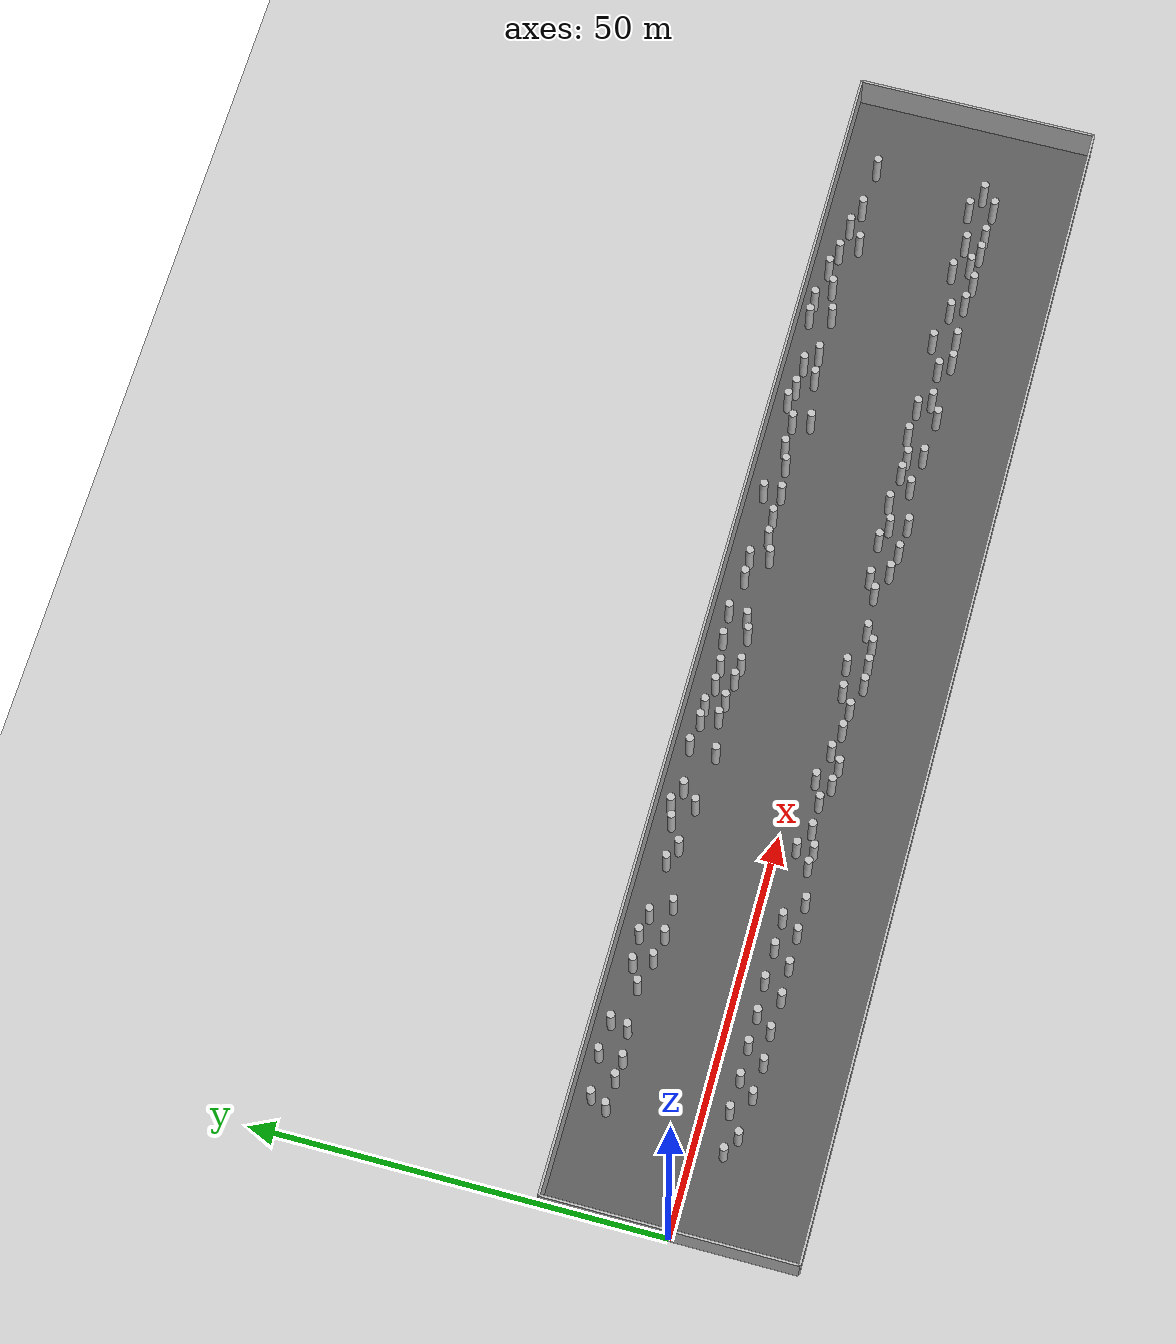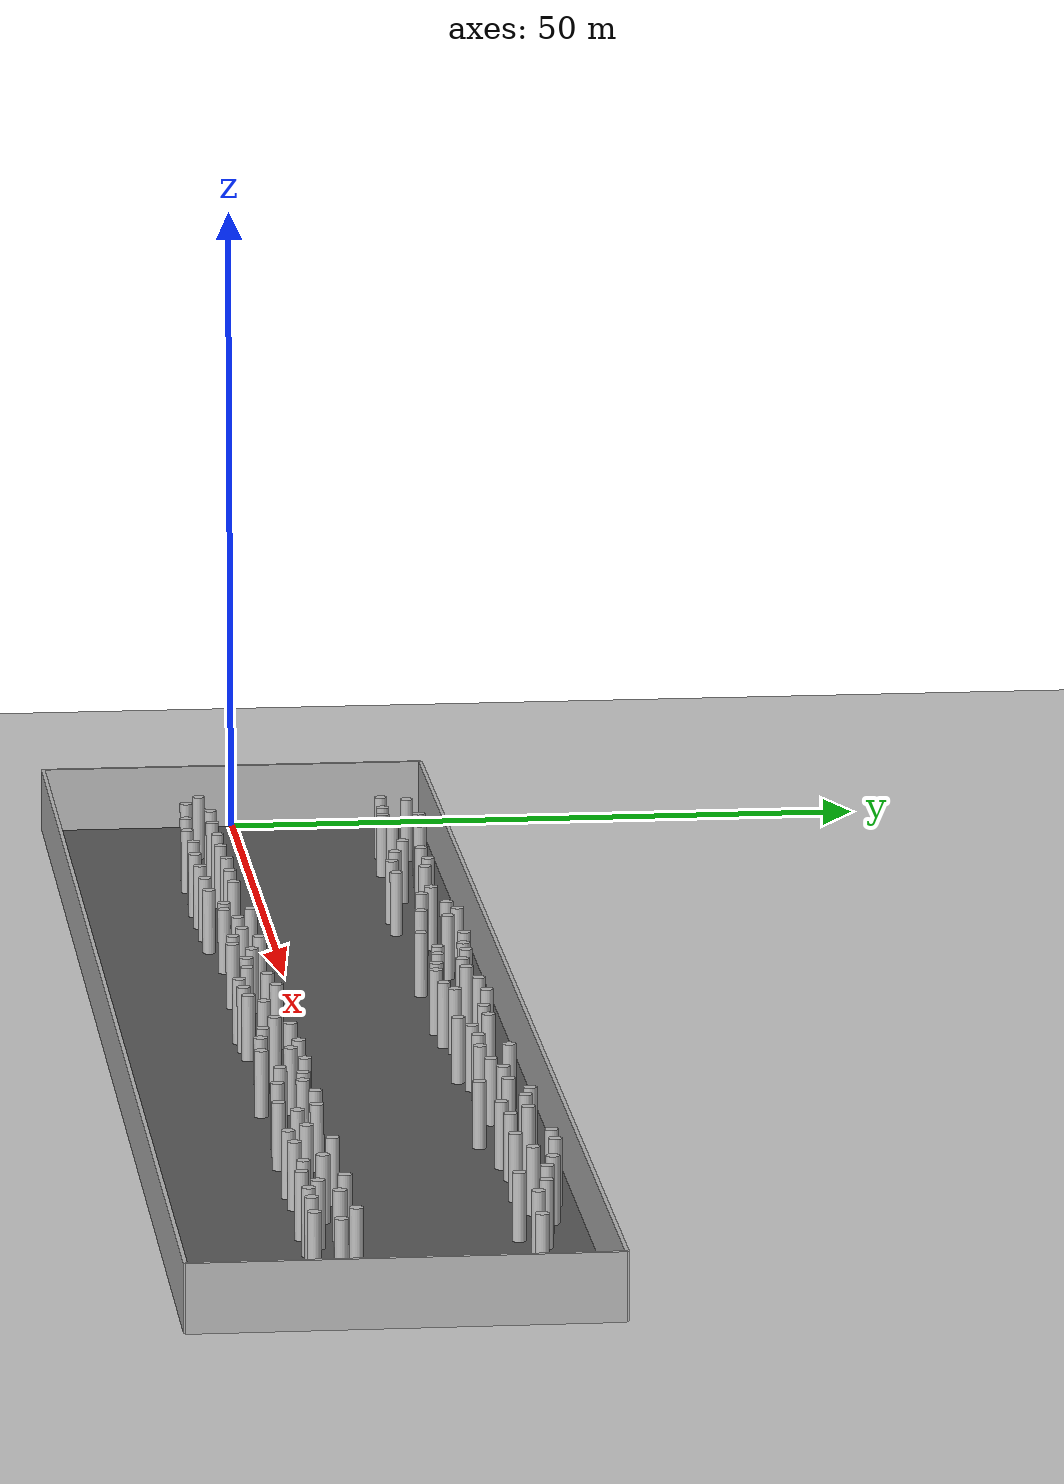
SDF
<?xml version="1.0" ?>
<sdf version="1.5">
  <world name="default">
    <plugin name="gazebo_ros_state" filename="libgazebo_ros_state.so">
      <ros>
        <namespace>/gazebo</namespace>
      </ros>
      <update_rate>20.0</update_rate>
    </plugin>

    <include><uri>model://sun</uri></include>
    <include><uri>model://ground_plane</uri></include>

    <model name="corridor_floor">
      <static>true</static>
      <pose>75 0 0.01 0 0 0</pose>
      <link name="link">
        <collision name="collision">
          <geometry><box><size>150 30 0.02</size></box></geometry>
        </collision>
        <visual name="visual">
          <geometry><box><size>150 30 0.02</size></box></geometry>
          <material>
            <ambient>0.25 0.25 0.25 1</ambient>
            <diffuse>0.35 0.35 0.35 1</diffuse>
          </material>
        </visual>
      </link>
    </model>

    <physics name="default_physics" default="0" type="ode">
      <gravity>0 0 -9.8066</gravity>
      <ode>
        <solver>
          <type>quick</type>
          <iters>10</iters>
          <sor>1.3</sor>
          <use_dynamic_moi_rescaling>0</use_dynamic_moi_rescaling>
        </solver>
        <constraints>
          <cfm>0</cfm>
          <erp>0.2</erp>
          <contact_max_correcting_vel>100</contact_max_correcting_vel>
          <contact_surface_layer>0.001</contact_surface_layer>
        </constraints>
      </ode>
      <max_step_size>0.004</max_step_size>
      <real_time_factor>1</real_time_factor>
      <real_time_update_rate>250</real_time_update_rate>
      <magnetic_field>6.0e-6 2.3e-5 -4.2e-5</magnetic_field>
    </physics>

    <model name="left_wall">
      <static>true</static>
      <pose>75 15.15 2.5 0 0 0</pose>
      <link name="link">
        <collision name="collision">
          <geometry><box><size>150 0.3 5</size></box></geometry>
        </collision>
        <visual name="visual">
          <geometry><box><size>150 0.3 5</size></box></geometry>
        </visual>
      </link>
    </model>

    <model name="right_wall">
      <static>true</static>
      <pose>75 -15.15 2.5 0 0 0</pose>
      <link name="link">
        <collision name="collision">
          <geometry><box><size>150 0.3 5</size></box></geometry>
        </collision>
        <visual name="visual">
          <geometry><box><size>150 0.3 5</size></box></geometry>
        </visual>
      </link>
    </model>

    <model name="start_wall">
      <static>true</static>
      <pose>0 0 2.5 0 0 0</pose>
      <link name="link">
        <collision name="collision">
          <geometry><box><size>0.3 30.3 5</size></box></geometry>
        </collision>
        <visual name="visual">
          <geometry><box><size>0.3 30.3 5</size></box></geometry>
        </visual>
      </link>
    </model>

    <model name="end_wall">
      <static>true</static>
      <pose>150 0 2.5 0 0 0</pose>
      <link name="link">
        <collision name="collision">
          <geometry><box><size>0.3 30.3 5</size></box></geometry>
        </collision>
        <visual name="visual">
          <geometry><box><size>0.3 30.3 5</size></box></geometry>
        </visual>
      </link>
    </model>

    <include><name>cylinder_000</name><uri>model://cylinder_r05_h5</uri><pose>15.686 -2.953 2.5 0 0 0</pose></include>
    <include><name>cylinder_001</name><uri>model://cylinder_r05_h5</uri><pose>18.088 -5.049 2.5 0 0 0</pose></include>
    <include><name>cylinder_002</name><uri>model://cylinder_r05_h5</uri><pose>19.712 -3.126 2.5 0 0 0</pose></include>
    <include><name>cylinder_003</name><uri>model://cylinder_r05_h5</uri><pose>22.123 -5.277 2.5 0 0 0</pose></include>
    <include><name>cylinder_004</name><uri>model://cylinder_r05_h5</uri><pose>23.708 -3.039 2.5 0 0 0</pose></include>
    <include><name>cylinder_005</name><uri>model://cylinder_r05_h5</uri><pose>25.994 -5.092 2.5 0 0 0</pose></include>
    <include><name>cylinder_006</name><uri>model://cylinder_r05_h5</uri><pose>27.535 -3.099 2.5 0 0 0</pose></include>
    <include><name>cylinder_007</name><uri>model://cylinder_r05_h5</uri><pose>30.170 -5.292 2.5 0 0 0</pose></include>
    <include><name>cylinder_008</name><uri>model://cylinder_r05_h5</uri><pose>31.640 -2.943 2.5 0 0 0</pose></include>
    <include><name>cylinder_009</name><uri>model://cylinder_r05_h5</uri><pose>34.092 -5.204 2.5 0 0 0</pose></include>
    <include><name>cylinder_010</name><uri>model://cylinder_r05_h5</uri><pose>35.795 -3.031 2.5 0 0 0</pose></include>
    <include><name>cylinder_011</name><uri>model://cylinder_r05_h5</uri><pose>38.208 -5.139 2.5 0 0 0</pose></include>
    <include><name>cylinder_012</name><uri>model://cylinder_r05_h5</uri><pose>39.548 -3.034 2.5 0 0 0</pose></include>
    <include><name>cylinder_013</name><uri>model://cylinder_r05_h5</uri><pose>42.108 -5.121 2.5 0 0 0</pose></include>
    <include><name>cylinder_014</name><uri>model://cylinder_r05_h5</uri><pose>48.543 -4.456 2.5 0 0 0</pose></include>
    <include><name>cylinder_015</name><uri>model://cylinder_r05_h5</uri><pose>61.215 -3.394 2.5 0 0 0</pose></include>
    <include><name>cylinder_016</name><uri>model://cylinder_r05_h5</uri><pose>72.411 -2.457 2.5 0 0 0</pose></include>
    <include><name>cylinder_017</name><uri>model://cylinder_r05_h5</uri><pose>68.954 -2.844 2.5 0 0 0</pose></include>
    <include><name>cylinder_018</name><uri>model://cylinder_r05_h5</uri><pose>66.961 -4.200 2.5 0 0 0</pose></include>
    <include><name>cylinder_019</name><uri>model://cylinder_r05_h5</uri><pose>57.095 -4.488 2.5 0 0 0</pose></include>
    <include><name>cylinder_020</name><uri>model://cylinder_r05_h5</uri><pose>57.309 -2.485 2.5 0 0 0</pose></include>
    <include><name>cylinder_021</name><uri>model://cylinder_r05_h5</uri><pose>51.064 -3.628 2.5 0 0 0</pose></include>
    <include><name>cylinder_022</name><uri>model://cylinder_r05_h5</uri><pose>46.479 -4.293 2.5 0 0 0</pose></include>
    <include><name>cylinder_023</name><uri>model://cylinder_r05_h5</uri><pose>64.083 -4.023 2.5 0 0 0</pose></include>
    <include><name>cylinder_024</name><uri>model://cylinder_r05_h5</uri><pose>73.048 -4.961 2.5 0 0 0</pose></include>
    <include><name>cylinder_025</name><uri>model://cylinder_r05_h5</uri><pose>70.495 -5.081 2.5 0 0 0</pose></include>
    <include><name>cylinder_026</name><uri>model://cylinder_r05_h5</uri><pose>48.399 -2.426 2.5 0 0 0</pose></include>
    <include><name>cylinder_027</name><uri>model://cylinder_r05_h5</uri><pose>54.629 -3.577 2.5 0 0 0</pose></include>
    <include><name>cylinder_028</name><uri>model://cylinder_r05_h5</uri><pose>59.607 -4.719 2.5 0 0 0</pose></include>
    <include><name>cylinder_029</name><uri>model://cylinder_r05_h5</uri><pose>97.187 -4.259 2.5 0 0 0</pose></include>
    <include><name>cylinder_030</name><uri>model://cylinder_r05_h5</uri><pose>100.966 -2.926 2.5 0 0 0</pose></include>
    <include><name>cylinder_031</name><uri>model://cylinder_r05_h5</uri><pose>82.281 -3.414 2.5 0 0 0</pose></include>
    <include><name>cylinder_032</name><uri>model://cylinder_r05_h5</uri><pose>85.592 -4.554 2.5 0 0 0</pose></include>
    <include><name>cylinder_033</name><uri>model://cylinder_r05_h5</uri><pose>77.343 -3.800 2.5 0 0 0</pose></include>
    <include><name>cylinder_034</name><uri>model://cylinder_r05_h5</uri><pose>104.086 -2.296 2.5 0 0 0</pose></include>
    <include><name>cylinder_035</name><uri>model://cylinder_r05_h5</uri><pose>92.169 -5.210 2.5 0 0 0</pose></include>
    <include><name>cylinder_036</name><uri>model://cylinder_r05_h5</uri><pose>84.199 -2.408 2.5 0 0 0</pose></include>
    <include><name>cylinder_037</name><uri>model://cylinder_r05_h5</uri><pose>75.588 -4.810 2.5 0 0 0</pose></include>
    <include><name>cylinder_038</name><uri>model://cylinder_r05_h5</uri><pose>89.278 -2.234 2.5 0 0 0</pose></include>
    <include><name>cylinder_039</name><uri>model://cylinder_r05_h5</uri><pose>91.544 -3.019 2.5 0 0 0</pose></include>
    <include><name>cylinder_040</name><uri>model://cylinder_r05_h5</uri><pose>94.604 -2.237 2.5 0 0 0</pose></include>
    <include><name>cylinder_041</name><uri>model://cylinder_r05_h5</uri><pose>98.775 -2.721 2.5 0 0 0</pose></include>
    <include><name>cylinder_042</name><uri>model://cylinder_r05_h5</uri><pose>101.696 -4.820 2.5 0 0 0</pose></include>
    <include><name>cylinder_043</name><uri>model://cylinder_r05_h5</uri><pose>88.399 -4.954 2.5 0 0 0</pose></include>
    <include><name>cylinder_044</name><uri>model://cylinder_r05_h5</uri><pose>131.829 -2.969 2.5 0 0 0</pose></include>
    <include><name>cylinder_045</name><uri>model://cylinder_r05_h5</uri><pose>123.560 -4.816 2.5 0 0 0</pose></include>
    <include><name>cylinder_046</name><uri>model://cylinder_r05_h5</uri><pose>115.198 -5.199 2.5 0 0 0</pose></include>
    <include><name>cylinder_047</name><uri>model://cylinder_r05_h5</uri><pose>122.103 -3.314 2.5 0 0 0</pose></include>
    <include><name>cylinder_048</name><uri>model://cylinder_r05_h5</uri><pose>130.932 -5.076 2.5 0 0 0</pose></include>
    <include><name>cylinder_049</name><uri>model://cylinder_r05_h5</uri><pose>113.735 -3.767 2.5 0 0 0</pose></include>
    <include><name>cylinder_050</name><uri>model://cylinder_r05_h5</uri><pose>118.370 -5.006 2.5 0 0 0</pose></include>
    <include><name>cylinder_051</name><uri>model://cylinder_r05_h5</uri><pose>109.448 -4.046 2.5 0 0 0</pose></include>
    <include><name>cylinder_052</name><uri>model://cylinder_r05_h5</uri><pose>126.532 -5.199 2.5 0 0 0</pose></include>
    <include><name>cylinder_053</name><uri>model://cylinder_r05_h5</uri><pose>133.462 -5.083 2.5 0 0 0</pose></include>
    <include><name>cylinder_054</name><uri>model://cylinder_r05_h5</uri><pose>107.970 -2.516 2.5 0 0 0</pose></include>
    <include><name>cylinder_055</name><uri>model://cylinder_r05_h5</uri><pose>117.389 -2.210 2.5 0 0 0</pose></include>
    <include><name>cylinder_056</name><uri>model://cylinder_r05_h5</uri><pose>128.978 -4.254 2.5 0 0 0</pose></include>
    <include><name>cylinder_057</name><uri>model://cylinder_r05_h5</uri><pose>127.639 -2.251 2.5 0 0 0</pose></include>
    <include><name>cylinder_058</name><uri>model://cylinder_r05_h5</uri><pose>107.212 -5.196 2.5 0 0 0</pose></include>
    <include><name>cylinder_059</name><uri>model://cylinder_r05_h5</uri><pose>10.810 -3.514 2.5 0 0 0</pose></include>
    <include><name>cylinder_060</name><uri>model://cylinder_r05_h5</uri><pose>13.036 -4.667 2.5 0 0 0</pose></include>
    <include><name>cylinder_061</name><uri>model://cylinder_r05_h5</uri><pose>139.439 -3.522 2.5 0 0 0</pose></include>
    <include><name>cylinder_062</name><uri>model://cylinder_r05_h5</uri><pose>137.432 -5.249 2.5 0 0 0</pose></include>
    <include><name>cylinder_063</name><uri>model://cylinder_r05_h5</uri><pose>136.638 -2.238 2.5 0 0 0</pose></include>
    <include><name>cylinder_064</name><uri>model://cylinder_r05_h5</uri><pose>80.261 12.249 2.5 0 0 0</pose></include>
    <include><name>cylinder_065</name><uri>model://cylinder_r05_h5</uri><pose>119.280 13.436 2.5 0 0 0</pose></include>
    <include><name>cylinder_066</name><uri>model://cylinder_r05_h5</uri><pose>98.435 11.885 2.5 0 0 0</pose></include>
    <include><name>cylinder_067</name><uri>model://cylinder_r05_h5</uri><pose>18.333 10.449 2.5 0 0 0</pose></include>
    <include><name>cylinder_068</name><uri>model://cylinder_r05_h5</uri><pose>71.803 12.719 2.5 0 0 0</pose></include>
    <include><name>cylinder_069</name><uri>model://cylinder_r05_h5</uri><pose>57.362 9.773 2.5 0 0 0</pose></include>
    <include><name>cylinder_070</name><uri>model://cylinder_r05_h5</uri><pose>35.995 12.118 2.5 0 0 0</pose></include>
    <include><name>cylinder_071</name><uri>model://cylinder_r05_h5</uri><pose>83.753 10.024 2.5 0 0 0</pose></include>
    <include><name>cylinder_072</name><uri>model://cylinder_r05_h5</uri><pose>82.968 12.343 2.5 0 0 0</pose></include>
    <include><name>cylinder_073</name><uri>model://cylinder_r05_h5</uri><pose>50.425 10.429 2.5 0 0 0</pose></include>
    <include><name>cylinder_074</name><uri>model://cylinder_r05_h5</uri><pose>92.013 12.943 2.5 0 0 0</pose></include>
    <include><name>cylinder_075</name><uri>model://cylinder_r05_h5</uri><pose>12.352 10.823 2.5 0 0 0</pose></include>
    <include><name>cylinder_076</name><uri>model://cylinder_r05_h5</uri><pose>33.983 9.700 2.5 0 0 0</pose></include>
    <include><name>cylinder_077</name><uri>model://cylinder_r05_h5</uri><pose>33.311 12.609 2.5 0 0 0</pose></include>
    <include><name>cylinder_078</name><uri>model://cylinder_r05_h5</uri><pose>42.789 11.922 2.5 0 0 0</pose></include>
    <include><name>cylinder_079</name><uri>model://cylinder_r05_h5</uri><pose>96.084 11.201 2.5 0 0 0</pose></include>
    <include><name>cylinder_080</name><uri>model://cylinder_r05_h5</uri><pose>61.864 10.610 2.5 0 0 0</pose></include>
    <include><name>cylinder_081</name><uri>model://cylinder_r05_h5</uri><pose>104.732 13.157 2.5 0 0 0</pose></include>
    <include><name>cylinder_082</name><uri>model://cylinder_r05_h5</uri><pose>130.433 11.659 2.5 0 0 0</pose></include>
    <include><name>cylinder_083</name><uri>model://cylinder_r05_h5</uri><pose>101.994 11.882 2.5 0 0 0</pose></include>
    <include><name>cylinder_084</name><uri>model://cylinder_r05_h5</uri><pose>124.024 12.778 2.5 0 0 0</pose></include>
    <include><name>cylinder_085</name><uri>model://cylinder_r05_h5</uri><pose>44.977 10.986 2.5 0 0 0</pose></include>
    <include><name>cylinder_086</name><uri>model://cylinder_r05_h5</uri><pose>75.491 12.952 2.5 0 0 0</pose></include>
    <include><name>cylinder_087</name><uri>model://cylinder_r05_h5</uri><pose>60.941 12.652 2.5 0 0 0</pose></include>
    <include><name>cylinder_088</name><uri>model://cylinder_r05_h5</uri><pose>139.491 10.413 2.5 0 0 0</pose></include>
    <include><name>cylinder_089</name><uri>model://cylinder_r05_h5</uri><pose>133.387 10.789 2.5 0 0 0</pose></include>
    <include><name>cylinder_090</name><uri>model://cylinder_r05_h5</uri><pose>18.307 13.304 2.5 0 0 0</pose></include>
    <include><name>cylinder_091</name><uri>model://cylinder_r05_h5</uri><pose>117.590 10.793 2.5 0 0 0</pose></include>
    <include><name>cylinder_092</name><uri>model://cylinder_r05_h5</uri><pose>111.986 11.025 2.5 0 0 0</pose></include>
    <include><name>cylinder_093</name><uri>model://cylinder_r05_h5</uri><pose>52.157 12.309 2.5 0 0 0</pose></include>
    <include><name>cylinder_094</name><uri>model://cylinder_r05_h5</uri><pose>69.151 9.768 2.5 0 0 0</pose></include>
    <include><name>cylinder_095</name><uri>model://cylinder_r05_h5</uri><pose>126.595 12.112 2.5 0 0 0</pose></include>
    <include><name>cylinder_096</name><uri>model://cylinder_r05_h5</uri><pose>86.149 10.806 2.5 0 0 0</pose></include>
    <include><name>cylinder_097</name><uri>model://cylinder_r05_h5</uri><pose>67.077 10.015 2.5 0 0 0</pose></include>
    <include><name>cylinder_098</name><uri>model://cylinder_r05_h5</uri><pose>22.436 12.993 2.5 0 0 0</pose></include>
    <include><name>cylinder_099</name><uri>model://cylinder_r05_h5</uri><pose>110.120 12.485 2.5 0 0 0</pose></include>
    <include><name>cylinder_100</name><uri>model://cylinder_r05_h5</uri><pose>108.534 10.704 2.5 0 0 0</pose></include>
    <include><name>cylinder_101</name><uri>model://cylinder_r05_h5</uri><pose>65.853 12.089 2.5 0 0 0</pose></include>
    <include><name>cylinder_102</name><uri>model://cylinder_r05_h5</uri><pose>15.877 10.653 2.5 0 0 0</pose></include>
    <include><name>cylinder_103</name><uri>model://cylinder_r05_h5</uri><pose>29.736 12.406 2.5 0 0 0</pose></include>
    <include><name>cylinder_104</name><uri>model://cylinder_r05_h5</uri><pose>49.804 13.261 2.5 0 0 0</pose></include>
    <include><name>cylinder_105</name><uri>model://cylinder_r05_h5</uri><pose>121.383 11.659 2.5 0 0 0</pose></include>
    <include><name>cylinder_106</name><uri>model://cylinder_r05_h5</uri><pose>92.328 10.779 2.5 0 0 0</pose></include>
    <include><name>cylinder_107</name><uri>model://cylinder_r05_h5</uri><pose>75.085 10.611 2.5 0 0 0</pose></include>
    <include><name>cylinder_108</name><uri>model://cylinder_r05_h5</uri><pose>88.990 10.980 2.5 0 0 0</pose></include>
    <include><name>cylinder_109</name><uri>model://cylinder_r05_h5</uri><pose>62.952 12.621 2.5 0 0 0</pose></include>
    <include><name>cylinder_110</name><uri>model://cylinder_r05_h5</uri><pose>27.263 11.164 2.5 0 0 0</pose></include>
    <include><name>cylinder_111</name><uri>model://cylinder_r05_h5</uri><pose>21.947 10.881 2.5 0 0 0</pose></include>
    <include><name>cylinder_112</name><uri>model://cylinder_r05_h5</uri><pose>73.124 9.996 2.5 0 0 0</pose></include>
    <include><name>cylinder_113</name><uri>model://cylinder_r05_h5</uri><pose>57.568 13.034 2.5 0 0 0</pose></include>
    <include><name>cylinder_114</name><uri>model://cylinder_r05_h5</uri><pose>13.241 12.801 2.5 0 0 0</pose></include>
    <include><name>cylinder_115</name><uri>model://cylinder_r05_h5</uri><pose>128.313 9.959 2.5 0 0 0</pose></include>
    <include><name>cylinder_116</name><uri>model://cylinder_r05_h5</uri><pose>102.668 9.709 2.5 0 0 0</pose></include>
    <include><name>cylinder_117</name><uri>model://cylinder_r05_h5</uri><pose>106.707 12.632 2.5 0 0 0</pose></include>
    <include><name>cylinder_118</name><uri>model://cylinder_r05_h5</uri><pose>37.812 9.715 2.5 0 0 0</pose></include>
    <include><name>cylinder_119</name><uri>model://cylinder_r05_h5</uri><pose>30.863 10.240 2.5 0 0 0</pose></include>
    <include><name>cylinder_120</name><uri>model://cylinder_r05_h5</uri><pose>116.763 13.464 2.5 0 0 0</pose></include>
    <include><name>cylinder_121</name><uri>model://cylinder_r05_h5</uri><pose>68.350 12.137 2.5 0 0 0</pose></include>
    <include><name>cylinder_122</name><uri>model://cylinder_r05_h5</uri><pose>47.740 12.636 2.5 0 0 0</pose></include>
    <include><name>cylinder_123</name><uri>model://cylinder_r05_h5</uri><pose>64.155 10.396 2.5 0 0 0</pose></include>

  </world>
</sdf>

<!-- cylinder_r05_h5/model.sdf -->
<sdf version="1.5">
  <model name="cylinder_r05_h5">
    <static>true</static>
    <link name="link">
      <collision name="collision">
        <geometry>
          <cylinder>
            <radius>0.5</radius>
            <length>5</length>
          </cylinder>
        </geometry>
      </collision>
      <visual name="visual">
        <geometry>
          <cylinder>
            <radius>0.5</radius>
            <length>5</length>
          </cylinder>
        </geometry>
        <material>
          <ambient>0.5 0.5 0.5 1</ambient>
          <diffuse>0.75 0.75 0.75 1</diffuse>
        </material>
      </visual>
    </link>
  </model>
</sdf>
